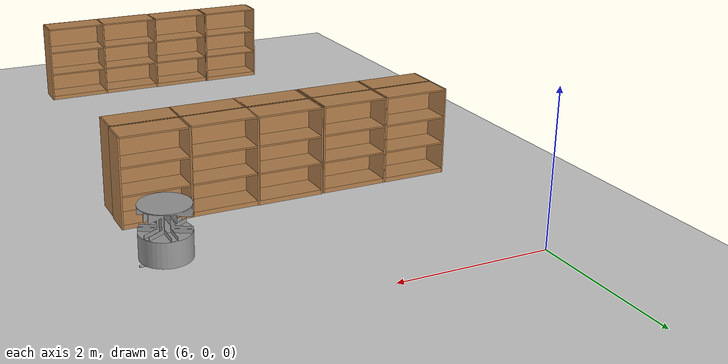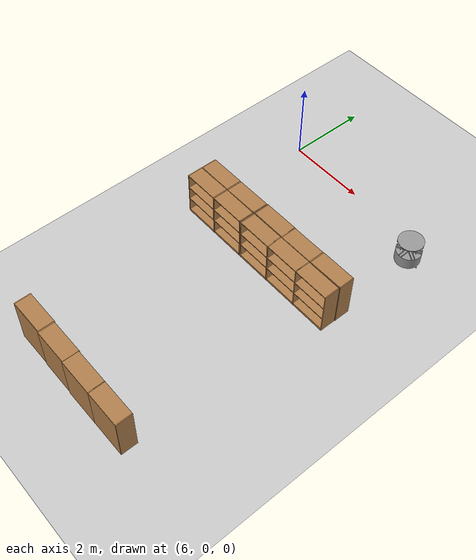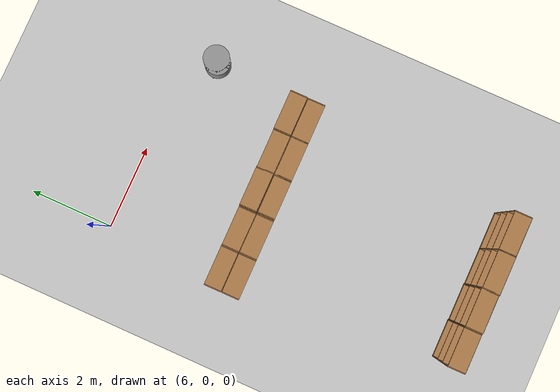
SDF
<sdf version="1.7">
 <world name="default">
  <model name="ground_plane">
   <static>1</static>
   <link name="link">
    <collision name="collision">
     <geometry><plane><normal>0 0 1</normal><size>100 100</size></plane></geometry>
     <surface><friction><ode><mu>100</mu><mu2>50</mu2></ode></friction></surface>
    </collision>
    <visual name="visual">
     <cast_shadows>0</cast_shadows>
     <geometry><plane><normal>0 0 1</normal><size>100 100</size></plane></geometry>
     <material>
      <script><uri>file://media/materials/scripts/gazebo.material</uri><name>Gazebo/Grey</name></script>
     </material>
    </visual>
   </link>
  </model>
  <model name="bookshelf_clone_0_clone_0_clone_clone">
   <static>1</static>
   <link name="link">
    <inertial><mass>1</mass></inertial>
    <collision name="back">
     <pose>0 0.005 0.6 0 -0 0</pose>
     <geometry><box><size>0.9 0.01 1.2</size></box></geometry>
    </collision>
    <visual name="visual1">
     <pose>0 0.005 0.6 0 -0 0</pose>
     <geometry><box><size>0.9 0.01 1.2</size></box></geometry>
     <material>
      <script><uri>file://media/materials/scripts/gazebo.material</uri><name>Gazebo/Wood</name></script>
     </material>
    </visual>
    <collision name="left_side">
     <pose>0.45 -0.195 0.6 0 -0 0</pose>
     <geometry><box><size>0.02 0.4 1.2</size></box></geometry>
    </collision>
    <visual name="visual2">
     <pose>0.45 -0.195 0.6 0 -0 0</pose>
     <geometry><box><size>0.02 0.4 1.2</size></box></geometry>
     <material>
      <script><uri>file://media/materials/scripts/gazebo.material</uri><name>Gazebo/Wood</name></script>
     </material>
    </visual>
    <collision name="right_side">
     <pose>-0.45 -0.195 0.6 0 -0 0</pose>
     <geometry><box><size>0.02 0.4 1.2</size></box></geometry>
    </collision>
    <visual name="visual3">
     <pose>-0.45 -0.195 0.6 0 -0 0</pose>
     <geometry><box><size>0.02 0.4 1.2</size></box></geometry>
     <material>
      <script><uri>file://media/materials/scripts/gazebo.material</uri><name>Gazebo/Wood</name></script>
     </material>
    </visual>
    <collision name="bottom">
     <pose>0 -0.195 0.03 0 -0 0</pose>
     <geometry><box><size>0.88 0.4 0.06</size></box></geometry>
    </collision>
    <visual name="visual4">
     <pose>0 -0.195 0.03 0 -0 0</pose>
     <geometry><box><size>0.88 0.4 0.06</size></box></geometry>
     <material>
      <script><uri>file://media/materials/scripts/gazebo.material</uri><name>Gazebo/Wood</name></script>
     </material>
    </visual>
    <collision name="top">
     <pose>0 -0.195 1.19 0 -0 0</pose>
     <geometry><box><size>0.88 0.4 0.02</size></box></geometry>
    </collision>
    <visual name="visual5">
     <pose>0 -0.195 1.19 0 -0 0</pose>
     <geometry><box><size>0.88 0.4 0.02</size></box></geometry>
     <material>
      <script><uri>file://media/materials/scripts/gazebo.material</uri><name>Gazebo/Wood</name></script>
     </material>
    </visual>
    <collision name="low_shelf">
     <pose>0 -0.195 0.43 0 -0 0</pose>
     <geometry><box><size>0.88 0.4 0.02</size></box></geometry>
    </collision>
    <visual name="visual6">
     <pose>0 -0.195 0.43 0 -0 0</pose>
     <geometry><box><size>0.88 0.4 0.02</size></box></geometry>
     <material>
      <script><uri>file://media/materials/scripts/gazebo.material</uri><name>Gazebo/Wood</name></script>
     </material>
    </visual>
    <collision name="high_shelf">
     <pose>0 -0.195 0.8 0 -0 0</pose>
     <geometry><box><size>0.88 0.4 0.02</size></box></geometry>
    </collision>
    <visual name="visual7">
     <pose>0 -0.195 0.8 0 -0 0</pose>
     <geometry><box><size>0.88 0.4 0.02</size></box></geometry>
     <material>
      <script><uri>file://media/materials/scripts/gazebo.material</uri><name>Gazebo/Wood</name></script>
     </material>
    </visual>
   </link>
   <pose>8.09166 -2.97864 0 0 0 -3.14107</pose>
  </model>
  <model name="bookshelf_clone_0_clone_0_clone_clone_clone">
   <static>1</static>
   <link name="link">
    <inertial><mass>1</mass></inertial>
    <collision name="back">
     <pose>0 0.005 0.6 0 -0 0</pose>
     <geometry><box><size>0.9 0.01 1.2</size></box></geometry>
    </collision>
    <visual name="visual1">
     <pose>0 0.005 0.6 0 -0 0</pose>
     <geometry><box><size>0.9 0.01 1.2</size></box></geometry>
     <material>
      <script><uri>file://media/materials/scripts/gazebo.material</uri><name>Gazebo/Wood</name></script>
     </material>
    </visual>
    <collision name="left_side">
     <pose>0.45 -0.195 0.6 0 -0 0</pose>
     <geometry><box><size>0.02 0.4 1.2</size></box></geometry>
    </collision>
    <visual name="visual2">
     <pose>0.45 -0.195 0.6 0 -0 0</pose>
     <geometry><box><size>0.02 0.4 1.2</size></box></geometry>
     <material>
      <script><uri>file://media/materials/scripts/gazebo.material</uri><name>Gazebo/Wood</name></script>
     </material>
    </visual>
    <collision name="right_side">
     <pose>-0.45 -0.195 0.6 0 -0 0</pose>
     <geometry><box><size>0.02 0.4 1.2</size></box></geometry>
    </collision>
    <visual name="visual3">
     <pose>-0.45 -0.195 0.6 0 -0 0</pose>
     <geometry><box><size>0.02 0.4 1.2</size></box></geometry>
     <material>
      <script><uri>file://media/materials/scripts/gazebo.material</uri><name>Gazebo/Wood</name></script>
     </material>
    </visual>
    <collision name="bottom">
     <pose>0 -0.195 0.03 0 -0 0</pose>
     <geometry><box><size>0.88 0.4 0.06</size></box></geometry>
    </collision>
    <visual name="visual4">
     <pose>0 -0.195 0.03 0 -0 0</pose>
     <geometry><box><size>0.88 0.4 0.06</size></box></geometry>
     <material>
      <script><uri>file://media/materials/scripts/gazebo.material</uri><name>Gazebo/Wood</name></script>
     </material>
    </visual>
    <collision name="top">
     <pose>0 -0.195 1.19 0 -0 0</pose>
     <geometry><box><size>0.88 0.4 0.02</size></box></geometry>
    </collision>
    <visual name="visual5">
     <pose>0 -0.195 1.19 0 -0 0</pose>
     <geometry><box><size>0.88 0.4 0.02</size></box></geometry>
     <material>
      <script><uri>file://media/materials/scripts/gazebo.material</uri><name>Gazebo/Wood</name></script>
     </material>
    </visual>
    <collision name="low_shelf">
     <pose>0 -0.195 0.43 0 -0 0</pose>
     <geometry><box><size>0.88 0.4 0.02</size></box></geometry>
    </collision>
    <visual name="visual6">
     <pose>0 -0.195 0.43 0 -0 0</pose>
     <geometry><box><size>0.88 0.4 0.02</size></box></geometry>
     <material>
      <script><uri>file://media/materials/scripts/gazebo.material</uri><name>Gazebo/Wood</name></script>
     </material>
    </visual>
    <collision name="high_shelf">
     <pose>0 -0.195 0.8 0 -0 0</pose>
     <geometry><box><size>0.88 0.4 0.02</size></box></geometry>
    </collision>
    <visual name="visual7">
     <pose>0 -0.195 0.8 0 -0 0</pose>
     <geometry><box><size>0.88 0.4 0.02</size></box></geometry>
     <material>
      <script><uri>file://media/materials/scripts/gazebo.material</uri><name>Gazebo/Wood</name></script>
     </material>
    </visual>
   </link>
   <pose>6.23979 -2.98685 0 0 0 -3.14107</pose>
  </model>
  <model name="bookshelf_clone_0_clone_0_clone_clone_clone_clone">
   <static>1</static>
   <link name="link">
    <inertial><mass>1</mass></inertial>
    <collision name="back">
     <pose>0 0.005 0.6 0 -0 0</pose>
     <geometry><box><size>0.9 0.01 1.2</size></box></geometry>
    </collision>
    <visual name="visual1">
     <pose>0 0.005 0.6 0 -0 0</pose>
     <geometry><box><size>0.9 0.01 1.2</size></box></geometry>
     <material>
      <script><uri>file://media/materials/scripts/gazebo.material</uri><name>Gazebo/Wood</name></script>
     </material>
    </visual>
    <collision name="left_side">
     <pose>0.45 -0.195 0.6 0 -0 0</pose>
     <geometry><box><size>0.02 0.4 1.2</size></box></geometry>
    </collision>
    <visual name="visual2">
     <pose>0.45 -0.195 0.6 0 -0 0</pose>
     <geometry><box><size>0.02 0.4 1.2</size></box></geometry>
     <material>
      <script><uri>file://media/materials/scripts/gazebo.material</uri><name>Gazebo/Wood</name></script>
     </material>
    </visual>
    <collision name="right_side">
     <pose>-0.45 -0.195 0.6 0 -0 0</pose>
     <geometry><box><size>0.02 0.4 1.2</size></box></geometry>
    </collision>
    <visual name="visual3">
     <pose>-0.45 -0.195 0.6 0 -0 0</pose>
     <geometry><box><size>0.02 0.4 1.2</size></box></geometry>
     <material>
      <script><uri>file://media/materials/scripts/gazebo.material</uri><name>Gazebo/Wood</name></script>
     </material>
    </visual>
    <collision name="bottom">
     <pose>0 -0.195 0.03 0 -0 0</pose>
     <geometry><box><size>0.88 0.4 0.06</size></box></geometry>
    </collision>
    <visual name="visual4">
     <pose>0 -0.195 0.03 0 -0 0</pose>
     <geometry><box><size>0.88 0.4 0.06</size></box></geometry>
     <material>
      <script><uri>file://media/materials/scripts/gazebo.material</uri><name>Gazebo/Wood</name></script>
     </material>
    </visual>
    <collision name="top">
     <pose>0 -0.195 1.19 0 -0 0</pose>
     <geometry><box><size>0.88 0.4 0.02</size></box></geometry>
    </collision>
    <visual name="visual5">
     <pose>0 -0.195 1.19 0 -0 0</pose>
     <geometry><box><size>0.88 0.4 0.02</size></box></geometry>
     <material>
      <script><uri>file://media/materials/scripts/gazebo.material</uri><name>Gazebo/Wood</name></script>
     </material>
    </visual>
    <collision name="low_shelf">
     <pose>0 -0.195 0.43 0 -0 0</pose>
     <geometry><box><size>0.88 0.4 0.02</size></box></geometry>
    </collision>
    <visual name="visual6">
     <pose>0 -0.195 0.43 0 -0 0</pose>
     <geometry><box><size>0.88 0.4 0.02</size></box></geometry>
     <material>
      <script><uri>file://media/materials/scripts/gazebo.material</uri><name>Gazebo/Wood</name></script>
     </material>
    </visual>
    <collision name="high_shelf">
     <pose>0 -0.195 0.8 0 -0 0</pose>
     <geometry><box><size>0.88 0.4 0.02</size></box></geometry>
    </collision>
    <visual name="visual7">
     <pose>0 -0.195 0.8 0 -0 0</pose>
     <geometry><box><size>0.88 0.4 0.02</size></box></geometry>
     <material>
      <script><uri>file://media/materials/scripts/gazebo.material</uri><name>Gazebo/Wood</name></script>
     </material>
    </visual>
   </link>
   <pose>7.1578 -2.98828 0 0 0 -3.14107</pose>
  </model>
  <model name="bookshelf_clone_0_clone_0_clone_clone_clone_clone_clone_1_clone_clone_clone_clone_clone_clone_clone_clone_clone_clone_0_clone_clone_clone_clone_clone_0_clone_1_clone_2">
   <static>1</static>
   <link name="link">
    <inertial><mass>1</mass></inertial>
    <collision name="back">
     <pose>0 0.005 0.6 0 -0 0</pose>
     <geometry><box><size>0.9 0.01 1.2</size></box></geometry>
    </collision>
    <visual name="visual1">
     <pose>0 0.005 0.6 0 -0 0</pose>
     <geometry><box><size>0.9 0.01 1.2</size></box></geometry>
     <material>
      <script><uri>file://media/materials/scripts/gazebo.material</uri><name>Gazebo/Wood</name></script>
     </material>
    </visual>
    <collision name="left_side">
     <pose>0.45 -0.195 0.6 0 -0 0</pose>
     <geometry><box><size>0.02 0.4 1.2</size></box></geometry>
    </collision>
    <visual name="visual2">
     <pose>0.45 -0.195 0.6 0 -0 0</pose>
     <geometry><box><size>0.02 0.4 1.2</size></box></geometry>
     <material>
      <script><uri>file://media/materials/scripts/gazebo.material</uri><name>Gazebo/Wood</name></script>
     </material>
    </visual>
    <collision name="right_side">
     <pose>-0.45 -0.195 0.6 0 -0 0</pose>
     <geometry><box><size>0.02 0.4 1.2</size></box></geometry>
    </collision>
    <visual name="visual3">
     <pose>-0.45 -0.195 0.6 0 -0 0</pose>
     <geometry><box><size>0.02 0.4 1.2</size></box></geometry>
     <material>
      <script><uri>file://media/materials/scripts/gazebo.material</uri><name>Gazebo/Wood</name></script>
     </material>
    </visual>
    <collision name="bottom">
     <pose>0 -0.195 0.03 0 -0 0</pose>
     <geometry><box><size>0.88 0.4 0.06</size></box></geometry>
    </collision>
    <visual name="visual4">
     <pose>0 -0.195 0.03 0 -0 0</pose>
     <geometry><box><size>0.88 0.4 0.06</size></box></geometry>
     <material>
      <script><uri>file://media/materials/scripts/gazebo.material</uri><name>Gazebo/Wood</name></script>
     </material>
    </visual>
    <collision name="top">
     <pose>0 -0.195 1.19 0 -0 0</pose>
     <geometry><box><size>0.88 0.4 0.02</size></box></geometry>
    </collision>
    <visual name="visual5">
     <pose>0 -0.195 1.19 0 -0 0</pose>
     <geometry><box><size>0.88 0.4 0.02</size></box></geometry>
     <material>
      <script><uri>file://media/materials/scripts/gazebo.material</uri><name>Gazebo/Wood</name></script>
     </material>
    </visual>
    <collision name="low_shelf">
     <pose>0 -0.195 0.43 0 -0 0</pose>
     <geometry><box><size>0.88 0.4 0.02</size></box></geometry>
    </collision>
    <visual name="visual6">
     <pose>0 -0.195 0.43 0 -0 0</pose>
     <geometry><box><size>0.88 0.4 0.02</size></box></geometry>
     <material>
      <script><uri>file://media/materials/scripts/gazebo.material</uri><name>Gazebo/Wood</name></script>
     </material>
    </visual>
    <collision name="high_shelf">
     <pose>0 -0.195 0.8 0 -0 0</pose>
     <geometry><box><size>0.88 0.4 0.02</size></box></geometry>
    </collision>
    <visual name="visual7">
     <pose>0 -0.195 0.8 0 -0 0</pose>
     <geometry><box><size>0.88 0.4 0.02</size></box></geometry>
     <material>
      <script><uri>file://media/materials/scripts/gazebo.material</uri><name>Gazebo/Wood</name></script>
     </material>
    </visual>
   </link>
   <pose>6.24111 -3.009 0.004614 0 -0 0.000147</pose>
  </model>
  <model name="bookshelf_clone_0_clone_0_clone_clone_clone_clone_clone_1_clone_clone_clone_clone_clone_clone_clone_clone_clone_clone_0_clone_clone_clone_clone_clone_0_clone_1_clone_2_clone">
   <static>1</static>
   <link name="link">
    <inertial><mass>1</mass></inertial>
    <collision name="back">
     <pose>0 0.005 0.6 0 -0 0</pose>
     <geometry><box><size>0.9 0.01 1.2</size></box></geometry>
    </collision>
    <visual name="visual1">
     <pose>0 0.005 0.6 0 -0 0</pose>
     <geometry><box><size>0.9 0.01 1.2</size></box></geometry>
     <material>
      <script><uri>file://media/materials/scripts/gazebo.material</uri><name>Gazebo/Wood</name></script>
     </material>
    </visual>
    <collision name="left_side">
     <pose>0.45 -0.195 0.6 0 -0 0</pose>
     <geometry><box><size>0.02 0.4 1.2</size></box></geometry>
    </collision>
    <visual name="visual2">
     <pose>0.45 -0.195 0.6 0 -0 0</pose>
     <geometry><box><size>0.02 0.4 1.2</size></box></geometry>
     <material>
      <script><uri>file://media/materials/scripts/gazebo.material</uri><name>Gazebo/Wood</name></script>
     </material>
    </visual>
    <collision name="right_side">
     <pose>-0.45 -0.195 0.6 0 -0 0</pose>
     <geometry><box><size>0.02 0.4 1.2</size></box></geometry>
    </collision>
    <visual name="visual3">
     <pose>-0.45 -0.195 0.6 0 -0 0</pose>
     <geometry><box><size>0.02 0.4 1.2</size></box></geometry>
     <material>
      <script><uri>file://media/materials/scripts/gazebo.material</uri><name>Gazebo/Wood</name></script>
     </material>
    </visual>
    <collision name="bottom">
     <pose>0 -0.195 0.03 0 -0 0</pose>
     <geometry><box><size>0.88 0.4 0.06</size></box></geometry>
    </collision>
    <visual name="visual4">
     <pose>0 -0.195 0.03 0 -0 0</pose>
     <geometry><box><size>0.88 0.4 0.06</size></box></geometry>
     <material>
      <script><uri>file://media/materials/scripts/gazebo.material</uri><name>Gazebo/Wood</name></script>
     </material>
    </visual>
    <collision name="top">
     <pose>0 -0.195 1.19 0 -0 0</pose>
     <geometry><box><size>0.88 0.4 0.02</size></box></geometry>
    </collision>
    <visual name="visual5">
     <pose>0 -0.195 1.19 0 -0 0</pose>
     <geometry><box><size>0.88 0.4 0.02</size></box></geometry>
     <material>
      <script><uri>file://media/materials/scripts/gazebo.material</uri><name>Gazebo/Wood</name></script>
     </material>
    </visual>
    <collision name="low_shelf">
     <pose>0 -0.195 0.43 0 -0 0</pose>
     <geometry><box><size>0.88 0.4 0.02</size></box></geometry>
    </collision>
    <visual name="visual6">
     <pose>0 -0.195 0.43 0 -0 0</pose>
     <geometry><box><size>0.88 0.4 0.02</size></box></geometry>
     <material>
      <script><uri>file://media/materials/scripts/gazebo.material</uri><name>Gazebo/Wood</name></script>
     </material>
    </visual>
    <collision name="high_shelf">
     <pose>0 -0.195 0.8 0 -0 0</pose>
     <geometry><box><size>0.88 0.4 0.02</size></box></geometry>
    </collision>
    <visual name="visual7">
     <pose>0 -0.195 0.8 0 -0 0</pose>
     <geometry><box><size>0.88 0.4 0.02</size></box></geometry>
     <material>
      <script><uri>file://media/materials/scripts/gazebo.material</uri><name>Gazebo/Wood</name></script>
     </material>
    </visual>
   </link>
   <pose>7.15854 -3.009 0.004614 0 -0 0.000147</pose>
  </model>
  <model name="bookshelf_clone_0_clone_0_clone_clone_clone_clone_clone_1_clone_clone_clone_clone_clone_clone_clone_clone_clone_clone_0_clone_clone_clone_clone_clone_0_clone_1_clone_2_clone_0">
   <static>1</static>
   <link name="link">
    <inertial><mass>1</mass></inertial>
    <collision name="back">
     <pose>0 0.005 0.6 0 -0 0</pose>
     <geometry><box><size>0.9 0.01 1.2</size></box></geometry>
    </collision>
    <visual name="visual1">
     <pose>0 0.005 0.6 0 -0 0</pose>
     <geometry><box><size>0.9 0.01 1.2</size></box></geometry>
     <material>
      <script><uri>file://media/materials/scripts/gazebo.material</uri><name>Gazebo/Wood</name></script>
     </material>
    </visual>
    <collision name="left_side">
     <pose>0.45 -0.195 0.6 0 -0 0</pose>
     <geometry><box><size>0.02 0.4 1.2</size></box></geometry>
    </collision>
    <visual name="visual2">
     <pose>0.45 -0.195 0.6 0 -0 0</pose>
     <geometry><box><size>0.02 0.4 1.2</size></box></geometry>
     <material>
      <script><uri>file://media/materials/scripts/gazebo.material</uri><name>Gazebo/Wood</name></script>
     </material>
    </visual>
    <collision name="right_side">
     <pose>-0.45 -0.195 0.6 0 -0 0</pose>
     <geometry><box><size>0.02 0.4 1.2</size></box></geometry>
    </collision>
    <visual name="visual3">
     <pose>-0.45 -0.195 0.6 0 -0 0</pose>
     <geometry><box><size>0.02 0.4 1.2</size></box></geometry>
     <material>
      <script><uri>file://media/materials/scripts/gazebo.material</uri><name>Gazebo/Wood</name></script>
     </material>
    </visual>
    <collision name="bottom">
     <pose>0 -0.195 0.03 0 -0 0</pose>
     <geometry><box><size>0.88 0.4 0.06</size></box></geometry>
    </collision>
    <visual name="visual4">
     <pose>0 -0.195 0.03 0 -0 0</pose>
     <geometry><box><size>0.88 0.4 0.06</size></box></geometry>
     <material>
      <script><uri>file://media/materials/scripts/gazebo.material</uri><name>Gazebo/Wood</name></script>
     </material>
    </visual>
    <collision name="top">
     <pose>0 -0.195 1.19 0 -0 0</pose>
     <geometry><box><size>0.88 0.4 0.02</size></box></geometry>
    </collision>
    <visual name="visual5">
     <pose>0 -0.195 1.19 0 -0 0</pose>
     <geometry><box><size>0.88 0.4 0.02</size></box></geometry>
     <material>
      <script><uri>file://media/materials/scripts/gazebo.material</uri><name>Gazebo/Wood</name></script>
     </material>
    </visual>
    <collision name="low_shelf">
     <pose>0 -0.195 0.43 0 -0 0</pose>
     <geometry><box><size>0.88 0.4 0.02</size></box></geometry>
    </collision>
    <visual name="visual6">
     <pose>0 -0.195 0.43 0 -0 0</pose>
     <geometry><box><size>0.88 0.4 0.02</size></box></geometry>
     <material>
      <script><uri>file://media/materials/scripts/gazebo.material</uri><name>Gazebo/Wood</name></script>
     </material>
    </visual>
    <collision name="high_shelf">
     <pose>0 -0.195 0.8 0 -0 0</pose>
     <geometry><box><size>0.88 0.4 0.02</size></box></geometry>
    </collision>
    <visual name="visual7">
     <pose>0 -0.195 0.8 0 -0 0</pose>
     <geometry><box><size>0.88 0.4 0.02</size></box></geometry>
     <material>
      <script><uri>file://media/materials/scripts/gazebo.material</uri><name>Gazebo/Wood</name></script>
     </material>
    </visual>
   </link>
   <pose>8.09797 -3.009 0.004614 0 -0 0.000147</pose>
  </model>
  <model name="bookshelf_clone_0_clone_0_clone_clone_clone_clone_clone_1_clone_clone_clone_clone_clone_clone_clone_clone_clone_clone_0_clone_clone_clone_clone_clone_0_clone_1_clone_2_clone_0_clone">
   <static>1</static>
   <link name="link">
    <inertial><mass>1</mass></inertial>
    <collision name="back">
     <pose>0 0.005 0.6 0 -0 0</pose>
     <geometry><box><size>0.9 0.01 1.2</size></box></geometry>
    </collision>
    <visual name="visual1">
     <pose>0 0.005 0.6 0 -0 0</pose>
     <geometry><box><size>0.9 0.01 1.2</size></box></geometry>
     <material>
      <script><uri>file://media/materials/scripts/gazebo.material</uri><name>Gazebo/Wood</name></script>
     </material>
    </visual>
    <collision name="left_side">
     <pose>0.45 -0.195 0.6 0 -0 0</pose>
     <geometry><box><size>0.02 0.4 1.2</size></box></geometry>
    </collision>
    <visual name="visual2">
     <pose>0.45 -0.195 0.6 0 -0 0</pose>
     <geometry><box><size>0.02 0.4 1.2</size></box></geometry>
     <material>
      <script><uri>file://media/materials/scripts/gazebo.material</uri><name>Gazebo/Wood</name></script>
     </material>
    </visual>
    <collision name="right_side">
     <pose>-0.45 -0.195 0.6 0 -0 0</pose>
     <geometry><box><size>0.02 0.4 1.2</size></box></geometry>
    </collision>
    <visual name="visual3">
     <pose>-0.45 -0.195 0.6 0 -0 0</pose>
     <geometry><box><size>0.02 0.4 1.2</size></box></geometry>
     <material>
      <script><uri>file://media/materials/scripts/gazebo.material</uri><name>Gazebo/Wood</name></script>
     </material>
    </visual>
    <collision name="bottom">
     <pose>0 -0.195 0.03 0 -0 0</pose>
     <geometry><box><size>0.88 0.4 0.06</size></box></geometry>
    </collision>
    <visual name="visual4">
     <pose>0 -0.195 0.03 0 -0 0</pose>
     <geometry><box><size>0.88 0.4 0.06</size></box></geometry>
     <material>
      <script><uri>file://media/materials/scripts/gazebo.material</uri><name>Gazebo/Wood</name></script>
     </material>
    </visual>
    <collision name="top">
     <pose>0 -0.195 1.19 0 -0 0</pose>
     <geometry><box><size>0.88 0.4 0.02</size></box></geometry>
    </collision>
    <visual name="visual5">
     <pose>0 -0.195 1.19 0 -0 0</pose>
     <geometry><box><size>0.88 0.4 0.02</size></box></geometry>
     <material>
      <script><uri>file://media/materials/scripts/gazebo.material</uri><name>Gazebo/Wood</name></script>
     </material>
    </visual>
    <collision name="low_shelf">
     <pose>0 -0.195 0.43 0 -0 0</pose>
     <geometry><box><size>0.88 0.4 0.02</size></box></geometry>
    </collision>
    <visual name="visual6">
     <pose>0 -0.195 0.43 0 -0 0</pose>
     <geometry><box><size>0.88 0.4 0.02</size></box></geometry>
     <material>
      <script><uri>file://media/materials/scripts/gazebo.material</uri><name>Gazebo/Wood</name></script>
     </material>
    </visual>
    <collision name="high_shelf">
     <pose>0 -0.195 0.8 0 -0 0</pose>
     <geometry><box><size>0.88 0.4 0.02</size></box></geometry>
    </collision>
    <visual name="visual7">
     <pose>0 -0.195 0.8 0 -0 0</pose>
     <geometry><box><size>0.88 0.4 0.02</size></box></geometry>
     <material>
      <script><uri>file://media/materials/scripts/gazebo.material</uri><name>Gazebo/Wood</name></script>
     </material>
    </visual>
   </link>
   <pose>8.98045 -3.00741 0.004614 0 -0 0.000147</pose>
  </model>
  <model name="bookshelf_clone_0_clone_0_clone_clone_clone_0">
   <static>1</static>
   <link name="link">
    <inertial><mass>1</mass></inertial>
    <collision name="back">
     <pose>0 0.005 0.6 0 -0 0</pose>
     <geometry><box><size>0.9 0.01 1.2</size></box></geometry>
    </collision>
    <visual name="visual1">
     <pose>0 0.005 0.6 0 -0 0</pose>
     <geometry><box><size>0.9 0.01 1.2</size></box></geometry>
     <material>
      <script><uri>file://media/materials/scripts/gazebo.material</uri><name>Gazebo/Wood</name></script>
     </material>
    </visual>
    <collision name="left_side">
     <pose>0.45 -0.195 0.6 0 -0 0</pose>
     <geometry><box><size>0.02 0.4 1.2</size></box></geometry>
    </collision>
    <visual name="visual2">
     <pose>0.45 -0.195 0.6 0 -0 0</pose>
     <geometry><box><size>0.02 0.4 1.2</size></box></geometry>
     <material>
      <script><uri>file://media/materials/scripts/gazebo.material</uri><name>Gazebo/Wood</name></script>
     </material>
    </visual>
    <collision name="right_side">
     <pose>-0.45 -0.195 0.6 0 -0 0</pose>
     <geometry><box><size>0.02 0.4 1.2</size></box></geometry>
    </collision>
    <visual name="visual3">
     <pose>-0.45 -0.195 0.6 0 -0 0</pose>
     <geometry><box><size>0.02 0.4 1.2</size></box></geometry>
     <material>
      <script><uri>file://media/materials/scripts/gazebo.material</uri><name>Gazebo/Wood</name></script>
     </material>
    </visual>
    <collision name="bottom">
     <pose>0 -0.195 0.03 0 -0 0</pose>
     <geometry><box><size>0.88 0.4 0.06</size></box></geometry>
    </collision>
    <visual name="visual4">
     <pose>0 -0.195 0.03 0 -0 0</pose>
     <geometry><box><size>0.88 0.4 0.06</size></box></geometry>
     <material>
      <script><uri>file://media/materials/scripts/gazebo.material</uri><name>Gazebo/Wood</name></script>
     </material>
    </visual>
    <collision name="top">
     <pose>0 -0.195 1.19 0 -0 0</pose>
     <geometry><box><size>0.88 0.4 0.02</size></box></geometry>
    </collision>
    <visual name="visual5">
     <pose>0 -0.195 1.19 0 -0 0</pose>
     <geometry><box><size>0.88 0.4 0.02</size></box></geometry>
     <material>
      <script><uri>file://media/materials/scripts/gazebo.material</uri><name>Gazebo/Wood</name></script>
     </material>
    </visual>
    <collision name="low_shelf">
     <pose>0 -0.195 0.43 0 -0 0</pose>
     <geometry><box><size>0.88 0.4 0.02</size></box></geometry>
    </collision>
    <visual name="visual6">
     <pose>0 -0.195 0.43 0 -0 0</pose>
     <geometry><box><size>0.88 0.4 0.02</size></box></geometry>
     <material>
      <script><uri>file://media/materials/scripts/gazebo.material</uri><name>Gazebo/Wood</name></script>
     </material>
    </visual>
    <collision name="high_shelf">
     <pose>0 -0.195 0.8 0 -0 0</pose>
     <geometry><box><size>0.88 0.4 0.02</size></box></geometry>
    </collision>
    <visual name="visual7">
     <pose>0 -0.195 0.8 0 -0 0</pose>
     <geometry><box><size>0.88 0.4 0.02</size></box></geometry>
     <material>
      <script><uri>file://media/materials/scripts/gazebo.material</uri><name>Gazebo/Wood</name></script>
     </material>
    </visual>
   </link>
   <pose>8.97687 -2.98648 0 0 0 -3.14107</pose>
  </model>
  <model name="bookshelf_clone_clone_1_clone_clone_0_clone_clone">
   <static>1</static>
   <link name="link">
    <inertial><mass>1</mass></inertial>
    <collision name="back">
     <pose>0 0.005 0.6 0 -0 0</pose>
     <geometry><box><size>0.9 0.01 1.2</size></box></geometry>
    </collision>
    <visual name="visual1">
     <pose>0 0.005 0.6 0 -0 0</pose>
     <geometry><box><size>0.9 0.01 1.2</size></box></geometry>
     <material>
      <script><uri>file://media/materials/scripts/gazebo.material</uri><name>Gazebo/Wood</name></script>
     </material>
    </visual>
    <collision name="left_side">
     <pose>0.45 -0.195 0.6 0 -0 0</pose>
     <geometry><box><size>0.02 0.4 1.2</size></box></geometry>
    </collision>
    <visual name="visual2">
     <pose>0.45 -0.195 0.6 0 -0 0</pose>
     <geometry><box><size>0.02 0.4 1.2</size></box></geometry>
     <material>
      <script><uri>file://media/materials/scripts/gazebo.material</uri><name>Gazebo/Wood</name></script>
     </material>
    </visual>
    <collision name="right_side">
     <pose>-0.45 -0.195 0.6 0 -0 0</pose>
     <geometry><box><size>0.02 0.4 1.2</size></box></geometry>
    </collision>
    <visual name="visual3">
     <pose>-0.45 -0.195 0.6 0 -0 0</pose>
     <geometry><box><size>0.02 0.4 1.2</size></box></geometry>
     <material>
      <script><uri>file://media/materials/scripts/gazebo.material</uri><name>Gazebo/Wood</name></script>
     </material>
    </visual>
    <collision name="bottom">
     <pose>0 -0.195 0.03 0 -0 0</pose>
     <geometry><box><size>0.88 0.4 0.06</size></box></geometry>
    </collision>
    <visual name="visual4">
     <pose>0 -0.195 0.03 0 -0 0</pose>
     <geometry><box><size>0.88 0.4 0.06</size></box></geometry>
     <material>
      <script><uri>file://media/materials/scripts/gazebo.material</uri><name>Gazebo/Wood</name></script>
     </material>
    </visual>
    <collision name="top">
     <pose>0 -0.195 1.19 0 -0 0</pose>
     <geometry><box><size>0.88 0.4 0.02</size></box></geometry>
    </collision>
    <visual name="visual5">
     <pose>0 -0.195 1.19 0 -0 0</pose>
     <geometry><box><size>0.88 0.4 0.02</size></box></geometry>
     <material>
      <script><uri>file://media/materials/scripts/gazebo.material</uri><name>Gazebo/Wood</name></script>
     </material>
    </visual>
    <collision name="low_shelf">
     <pose>0 -0.195 0.43 0 -0 0</pose>
     <geometry><box><size>0.88 0.4 0.02</size></box></geometry>
    </collision>
    <visual name="visual6">
     <pose>0 -0.195 0.43 0 -0 0</pose>
     <geometry><box><size>0.88 0.4 0.02</size></box></geometry>
     <material>
      <script><uri>file://media/materials/scripts/gazebo.material</uri><name>Gazebo/Wood</name></script>
     </material>
    </visual>
    <collision name="high_shelf">
     <pose>0 -0.195 0.8 0 -0 0</pose>
     <geometry><box><size>0.88 0.4 0.02</size></box></geometry>
    </collision>
    <visual name="visual7">
     <pose>0 -0.195 0.8 0 -0 0</pose>
     <geometry><box><size>0.88 0.4 0.02</size></box></geometry>
     <material>
      <script><uri>file://media/materials/scripts/gazebo.material</uri><name>Gazebo/Wood</name></script>
     </material>
    </visual>
   </link>
   <pose>6.76746 -8.38719 0 0 0 -3.14107</pose>
  </model>
  <model name="bookshelf_clone_clone_1_clone_clone_0_clone_clone_0">
   <static>1</static>
   <link name="link">
    <inertial><mass>1</mass></inertial>
    <collision name="back">
     <pose>0 0.005 0.6 0 -0 0</pose>
     <geometry><box><size>0.9 0.01 1.2</size></box></geometry>
    </collision>
    <visual name="visual1">
     <pose>0 0.005 0.6 0 -0 0</pose>
     <geometry><box><size>0.9 0.01 1.2</size></box></geometry>
     <material>
      <script><uri>file://media/materials/scripts/gazebo.material</uri><name>Gazebo/Wood</name></script>
     </material>
    </visual>
    <collision name="left_side">
     <pose>0.45 -0.195 0.6 0 -0 0</pose>
     <geometry><box><size>0.02 0.4 1.2</size></box></geometry>
    </collision>
    <visual name="visual2">
     <pose>0.45 -0.195 0.6 0 -0 0</pose>
     <geometry><box><size>0.02 0.4 1.2</size></box></geometry>
     <material>
      <script><uri>file://media/materials/scripts/gazebo.material</uri><name>Gazebo/Wood</name></script>
     </material>
    </visual>
    <collision name="right_side">
     <pose>-0.45 -0.195 0.6 0 -0 0</pose>
     <geometry><box><size>0.02 0.4 1.2</size></box></geometry>
    </collision>
    <visual name="visual3">
     <pose>-0.45 -0.195 0.6 0 -0 0</pose>
     <geometry><box><size>0.02 0.4 1.2</size></box></geometry>
     <material>
      <script><uri>file://media/materials/scripts/gazebo.material</uri><name>Gazebo/Wood</name></script>
     </material>
    </visual>
    <collision name="bottom">
     <pose>0 -0.195 0.03 0 -0 0</pose>
     <geometry><box><size>0.88 0.4 0.06</size></box></geometry>
    </collision>
    <visual name="visual4">
     <pose>0 -0.195 0.03 0 -0 0</pose>
     <geometry><box><size>0.88 0.4 0.06</size></box></geometry>
     <material>
      <script><uri>file://media/materials/scripts/gazebo.material</uri><name>Gazebo/Wood</name></script>
     </material>
    </visual>
    <collision name="top">
     <pose>0 -0.195 1.19 0 -0 0</pose>
     <geometry><box><size>0.88 0.4 0.02</size></box></geometry>
    </collision>
    <visual name="visual5">
     <pose>0 -0.195 1.19 0 -0 0</pose>
     <geometry><box><size>0.88 0.4 0.02</size></box></geometry>
     <material>
      <script><uri>file://media/materials/scripts/gazebo.material</uri><name>Gazebo/Wood</name></script>
     </material>
    </visual>
    <collision name="low_shelf">
     <pose>0 -0.195 0.43 0 -0 0</pose>
     <geometry><box><size>0.88 0.4 0.02</size></box></geometry>
    </collision>
    <visual name="visual6">
     <pose>0 -0.195 0.43 0 -0 0</pose>
     <geometry><box><size>0.88 0.4 0.02</size></box></geometry>
     <material>
      <script><uri>file://media/materials/scripts/gazebo.material</uri><name>Gazebo/Wood</name></script>
     </material>
    </visual>
    <collision name="high_shelf">
     <pose>0 -0.195 0.8 0 -0 0</pose>
     <geometry><box><size>0.88 0.4 0.02</size></box></geometry>
    </collision>
    <visual name="visual7">
     <pose>0 -0.195 0.8 0 -0 0</pose>
     <geometry><box><size>0.88 0.4 0.02</size></box></geometry>
     <material>
      <script><uri>file://media/materials/scripts/gazebo.material</uri><name>Gazebo/Wood</name></script>
     </material>
    </visual>
   </link>
   <pose>7.68281 -8.40007 0 0 0 -3.14107</pose>
  </model>
  <model name="bookshelf_clone_clone_1_clone_clone_0_clone_clone_1">
   <static>1</static>
   <link name="link">
    <inertial><mass>1</mass></inertial>
    <collision name="back">
     <pose>0 0.005 0.6 0 -0 0</pose>
     <geometry><box><size>0.9 0.01 1.2</size></box></geometry>
    </collision>
    <visual name="visual1">
     <pose>0 0.005 0.6 0 -0 0</pose>
     <geometry><box><size>0.9 0.01 1.2</size></box></geometry>
     <material>
      <script><uri>file://media/materials/scripts/gazebo.material</uri><name>Gazebo/Wood</name></script>
     </material>
    </visual>
    <collision name="left_side">
     <pose>0.45 -0.195 0.6 0 -0 0</pose>
     <geometry><box><size>0.02 0.4 1.2</size></box></geometry>
    </collision>
    <visual name="visual2">
     <pose>0.45 -0.195 0.6 0 -0 0</pose>
     <geometry><box><size>0.02 0.4 1.2</size></box></geometry>
     <material>
      <script><uri>file://media/materials/scripts/gazebo.material</uri><name>Gazebo/Wood</name></script>
     </material>
    </visual>
    <collision name="right_side">
     <pose>-0.45 -0.195 0.6 0 -0 0</pose>
     <geometry><box><size>0.02 0.4 1.2</size></box></geometry>
    </collision>
    <visual name="visual3">
     <pose>-0.45 -0.195 0.6 0 -0 0</pose>
     <geometry><box><size>0.02 0.4 1.2</size></box></geometry>
     <material>
      <script><uri>file://media/materials/scripts/gazebo.material</uri><name>Gazebo/Wood</name></script>
     </material>
    </visual>
    <collision name="bottom">
     <pose>0 -0.195 0.03 0 -0 0</pose>
     <geometry><box><size>0.88 0.4 0.06</size></box></geometry>
    </collision>
    <visual name="visual4">
     <pose>0 -0.195 0.03 0 -0 0</pose>
     <geometry><box><size>0.88 0.4 0.06</size></box></geometry>
     <material>
      <script><uri>file://media/materials/scripts/gazebo.material</uri><name>Gazebo/Wood</name></script>
     </material>
    </visual>
    <collision name="top">
     <pose>0 -0.195 1.19 0 -0 0</pose>
     <geometry><box><size>0.88 0.4 0.02</size></box></geometry>
    </collision>
    <visual name="visual5">
     <pose>0 -0.195 1.19 0 -0 0</pose>
     <geometry><box><size>0.88 0.4 0.02</size></box></geometry>
     <material>
      <script><uri>file://media/materials/scripts/gazebo.material</uri><name>Gazebo/Wood</name></script>
     </material>
    </visual>
    <collision name="low_shelf">
     <pose>0 -0.195 0.43 0 -0 0</pose>
     <geometry><box><size>0.88 0.4 0.02</size></box></geometry>
    </collision>
    <visual name="visual6">
     <pose>0 -0.195 0.43 0 -0 0</pose>
     <geometry><box><size>0.88 0.4 0.02</size></box></geometry>
     <material>
      <script><uri>file://media/materials/scripts/gazebo.material</uri><name>Gazebo/Wood</name></script>
     </material>
    </visual>
    <collision name="high_shelf">
     <pose>0 -0.195 0.8 0 -0 0</pose>
     <geometry><box><size>0.88 0.4 0.02</size></box></geometry>
    </collision>
    <visual name="visual7">
     <pose>0 -0.195 0.8 0 -0 0</pose>
     <geometry><box><size>0.88 0.4 0.02</size></box></geometry>
     <material>
      <script><uri>file://media/materials/scripts/gazebo.material</uri><name>Gazebo/Wood</name></script>
     </material>
    </visual>
   </link>
   <pose>8.5716 -8.41209 0 0 0 -3.14107</pose>
  </model>
  <model name="bookshelf_clone_clone_1_clone_clone_0_clone_clone_2">
   <static>1</static>
   <link name="link">
    <inertial><mass>1</mass></inertial>
    <collision name="back">
     <pose>0 0.005 0.6 0 -0 0</pose>
     <geometry><box><size>0.9 0.01 1.2</size></box></geometry>
    </collision>
    <visual name="visual1">
     <pose>0 0.005 0.6 0 -0 0</pose>
     <geometry><box><size>0.9 0.01 1.2</size></box></geometry>
     <material>
      <script><uri>file://media/materials/scripts/gazebo.material</uri><name>Gazebo/Wood</name></script>
     </material>
    </visual>
    <collision name="left_side">
     <pose>0.45 -0.195 0.6 0 -0 0</pose>
     <geometry><box><size>0.02 0.4 1.2</size></box></geometry>
    </collision>
    <visual name="visual2">
     <pose>0.45 -0.195 0.6 0 -0 0</pose>
     <geometry><box><size>0.02 0.4 1.2</size></box></geometry>
     <material>
      <script><uri>file://media/materials/scripts/gazebo.material</uri><name>Gazebo/Wood</name></script>
     </material>
    </visual>
    <collision name="right_side">
     <pose>-0.45 -0.195 0.6 0 -0 0</pose>
     <geometry><box><size>0.02 0.4 1.2</size></box></geometry>
    </collision>
    <visual name="visual3">
     <pose>-0.45 -0.195 0.6 0 -0 0</pose>
     <geometry><box><size>0.02 0.4 1.2</size></box></geometry>
     <material>
      <script><uri>file://media/materials/scripts/gazebo.material</uri><name>Gazebo/Wood</name></script>
     </material>
    </visual>
    <collision name="bottom">
     <pose>0 -0.195 0.03 0 -0 0</pose>
     <geometry><box><size>0.88 0.4 0.06</size></box></geometry>
    </collision>
    <visual name="visual4">
     <pose>0 -0.195 0.03 0 -0 0</pose>
     <geometry><box><size>0.88 0.4 0.06</size></box></geometry>
     <material>
      <script><uri>file://media/materials/scripts/gazebo.material</uri><name>Gazebo/Wood</name></script>
     </material>
    </visual>
    <collision name="top">
     <pose>0 -0.195 1.19 0 -0 0</pose>
     <geometry><box><size>0.88 0.4 0.02</size></box></geometry>
    </collision>
    <visual name="visual5">
     <pose>0 -0.195 1.19 0 -0 0</pose>
     <geometry><box><size>0.88 0.4 0.02</size></box></geometry>
     <material>
      <script><uri>file://media/materials/scripts/gazebo.material</uri><name>Gazebo/Wood</name></script>
     </material>
    </visual>
    <collision name="low_shelf">
     <pose>0 -0.195 0.43 0 -0 0</pose>
     <geometry><box><size>0.88 0.4 0.02</size></box></geometry>
    </collision>
    <visual name="visual6">
     <pose>0 -0.195 0.43 0 -0 0</pose>
     <geometry><box><size>0.88 0.4 0.02</size></box></geometry>
     <material>
      <script><uri>file://media/materials/scripts/gazebo.material</uri><name>Gazebo/Wood</name></script>
     </material>
    </visual>
    <collision name="high_shelf">
     <pose>0 -0.195 0.8 0 -0 0</pose>
     <geometry><box><size>0.88 0.4 0.02</size></box></geometry>
    </collision>
    <visual name="visual7">
     <pose>0 -0.195 0.8 0 -0 0</pose>
     <geometry><box><size>0.88 0.4 0.02</size></box></geometry>
     <material>
      <script><uri>file://media/materials/scripts/gazebo.material</uri><name>Gazebo/Wood</name></script>
     </material>
    </visual>
   </link>
   <pose>9.47375 -8.4111 0 0 0 -3.14107</pose>
  </model>
  <model name="bookshelf_clone_0_clone_0_clone_clone_clone_0_clone">
   <static>1</static>
   <link name="link">
    <inertial><mass>1</mass></inertial>
    <collision name="back">
     <pose>0 0.005 0.6 0 -0 0</pose>
     <geometry><box><size>0.9 0.01 1.2</size></box></geometry>
    </collision>
    <visual name="visual1">
     <pose>0 0.005 0.6 0 -0 0</pose>
     <geometry><box><size>0.9 0.01 1.2</size></box></geometry>
     <material>
      <script><uri>file://media/materials/scripts/gazebo.material</uri><name>Gazebo/Wood</name></script>
     </material>
    </visual>
    <collision name="left_side">
     <pose>0.45 -0.195 0.6 0 -0 0</pose>
     <geometry><box><size>0.02 0.4 1.2</size></box></geometry>
    </collision>
    <visual name="visual2">
     <pose>0.45 -0.195 0.6 0 -0 0</pose>
     <geometry><box><size>0.02 0.4 1.2</size></box></geometry>
     <material>
      <script><uri>file://media/materials/scripts/gazebo.material</uri><name>Gazebo/Wood</name></script>
     </material>
    </visual>
    <collision name="right_side">
     <pose>-0.45 -0.195 0.6 0 -0 0</pose>
     <geometry><box><size>0.02 0.4 1.2</size></box></geometry>
    </collision>
    <visual name="visual3">
     <pose>-0.45 -0.195 0.6 0 -0 0</pose>
     <geometry><box><size>0.02 0.4 1.2</size></box></geometry>
     <material>
      <script><uri>file://media/materials/scripts/gazebo.material</uri><name>Gazebo/Wood</name></script>
     </material>
    </visual>
    <collision name="bottom">
     <pose>0 -0.195 0.03 0 -0 0</pose>
     <geometry><box><size>0.88 0.4 0.06</size></box></geometry>
    </collision>
    <visual name="visual4">
     <pose>0 -0.195 0.03 0 -0 0</pose>
     <geometry><box><size>0.88 0.4 0.06</size></box></geometry>
     <material>
      <script><uri>file://media/materials/scripts/gazebo.material</uri><name>Gazebo/Wood</name></script>
     </material>
    </visual>
    <collision name="top">
     <pose>0 -0.195 1.19 0 -0 0</pose>
     <geometry><box><size>0.88 0.4 0.02</size></box></geometry>
    </collision>
    <visual name="visual5">
     <pose>0 -0.195 1.19 0 -0 0</pose>
     <geometry><box><size>0.88 0.4 0.02</size></box></geometry>
     <material>
      <script><uri>file://media/materials/scripts/gazebo.material</uri><name>Gazebo/Wood</name></script>
     </material>
    </visual>
    <collision name="low_shelf">
     <pose>0 -0.195 0.43 0 -0 0</pose>
     <geometry><box><size>0.88 0.4 0.02</size></box></geometry>
    </collision>
    <visual name="visual6">
     <pose>0 -0.195 0.43 0 -0 0</pose>
     <geometry><box><size>0.88 0.4 0.02</size></box></geometry>
     <material>
      <script><uri>file://media/materials/scripts/gazebo.material</uri><name>Gazebo/Wood</name></script>
     </material>
    </visual>
    <collision name="high_shelf">
     <pose>0 -0.195 0.8 0 -0 0</pose>
     <geometry><box><size>0.88 0.4 0.02</size></box></geometry>
    </collision>
    <visual name="visual7">
     <pose>0 -0.195 0.8 0 -0 0</pose>
     <geometry><box><size>0.88 0.4 0.02</size></box></geometry>
     <material>
      <script><uri>file://media/materials/scripts/gazebo.material</uri><name>Gazebo/Wood</name></script>
     </material>
    </visual>
   </link>
   <pose>9.89072 -2.97807 0 0 0 -3.14107</pose>
  </model>
  <model name="bookshelf_clone_0_clone_0_clone_clone_clone_clone_clone_1_clone_clone_clone_clone_clone_clone_clone_clone_clone_clone_0_clone_clone_clone_clone_clone_0_clone_1_clone_2_clone_0_clone_clone">
   <static>1</static>
   <link name="link">
    <inertial><mass>1</mass></inertial>
    <collision name="back">
     <pose>0 0.005 0.6 0 -0 0</pose>
     <geometry><box><size>0.9 0.01 1.2</size></box></geometry>
    </collision>
    <visual name="visual1">
     <pose>0 0.005 0.6 0 -0 0</pose>
     <geometry><box><size>0.9 0.01 1.2</size></box></geometry>
     <material>
      <script><uri>file://media/materials/scripts/gazebo.material</uri><name>Gazebo/Wood</name></script>
     </material>
    </visual>
    <collision name="left_side">
     <pose>0.45 -0.195 0.6 0 -0 0</pose>
     <geometry><box><size>0.02 0.4 1.2</size></box></geometry>
    </collision>
    <visual name="visual2">
     <pose>0.45 -0.195 0.6 0 -0 0</pose>
     <geometry><box><size>0.02 0.4 1.2</size></box></geometry>
     <material>
      <script><uri>file://media/materials/scripts/gazebo.material</uri><name>Gazebo/Wood</name></script>
     </material>
    </visual>
    <collision name="right_side">
     <pose>-0.45 -0.195 0.6 0 -0 0</pose>
     <geometry><box><size>0.02 0.4 1.2</size></box></geometry>
    </collision>
    <visual name="visual3">
     <pose>-0.45 -0.195 0.6 0 -0 0</pose>
     <geometry><box><size>0.02 0.4 1.2</size></box></geometry>
     <material>
      <script><uri>file://media/materials/scripts/gazebo.material</uri><name>Gazebo/Wood</name></script>
     </material>
    </visual>
    <collision name="bottom">
     <pose>0 -0.195 0.03 0 -0 0</pose>
     <geometry><box><size>0.88 0.4 0.06</size></box></geometry>
    </collision>
    <visual name="visual4">
     <pose>0 -0.195 0.03 0 -0 0</pose>
     <geometry><box><size>0.88 0.4 0.06</size></box></geometry>
     <material>
      <script><uri>file://media/materials/scripts/gazebo.material</uri><name>Gazebo/Wood</name></script>
     </material>
    </visual>
    <collision name="top">
     <pose>0 -0.195 1.19 0 -0 0</pose>
     <geometry><box><size>0.88 0.4 0.02</size></box></geometry>
    </collision>
    <visual name="visual5">
     <pose>0 -0.195 1.19 0 -0 0</pose>
     <geometry><box><size>0.88 0.4 0.02</size></box></geometry>
     <material>
      <script><uri>file://media/materials/scripts/gazebo.material</uri><name>Gazebo/Wood</name></script>
     </material>
    </visual>
    <collision name="low_shelf">
     <pose>0 -0.195 0.43 0 -0 0</pose>
     <geometry><box><size>0.88 0.4 0.02</size></box></geometry>
    </collision>
    <visual name="visual6">
     <pose>0 -0.195 0.43 0 -0 0</pose>
     <geometry><box><size>0.88 0.4 0.02</size></box></geometry>
     <material>
      <script><uri>file://media/materials/scripts/gazebo.material</uri><name>Gazebo/Wood</name></script>
     </material>
    </visual>
    <collision name="high_shelf">
     <pose>0 -0.195 0.8 0 -0 0</pose>
     <geometry><box><size>0.88 0.4 0.02</size></box></geometry>
    </collision>
    <visual name="visual7">
     <pose>0 -0.195 0.8 0 -0 0</pose>
     <geometry><box><size>0.88 0.4 0.02</size></box></geometry>
     <material>
      <script><uri>file://media/materials/scripts/gazebo.material</uri><name>Gazebo/Wood</name></script>
     </material>
    </visual>
   </link>
   <pose>9.88246 -3.00768 0.004614 0 -0 0.000147</pose>
  </model>
  <model name="book">
   <link name="link_0">
    <inertial>
     <mass>1</mass>
     <inertia>
      <ixx>0.166667</ixx>
      <ixy>0</ixy>
      <ixz>0</ixz>
      <iyy>0.166667</iyy>
      <iyz>0</iyz>
      <izz>0.166667</izz>
     </inertia>
    </inertial>
    <pose>3e-06 -5e-06 0 0 -0 0</pose>
    <visual name="visual">
     <geometry>
      <mesh><uri>/mnt/ENPM661p2/solidworks/textbookURDF/meshes/base_link.STL</uri><scale>1 1 1</scale></mesh>
     </geometry>
     <material>
      <lighting>1</lighting>
      <script><uri>file://media/materials/scripts/gazebo.material</uri><name>Gazebo/Grey</name></script>
      <shader type="pixel"/>
     </material>
    </visual>
    <collision name="collision">
     <geometry>
      <mesh><uri>/mnt/ENPM661p2/solidworks/textbookURDF/meshes/base_link.STL</uri><scale>1 1 1</scale></mesh>
     </geometry>
     <surface>
      <friction>
       <ode><mu>1</mu><mu2>1</mu2><fdir1>0 0 0</fdir1><slip1>0</slip1><slip2>0</slip2></ode>
       <torsional>
        <coefficient>1</coefficient>
        <patch_radius>0</patch_radius>
        <surface_radius>0</surface_radius>
        <use_patch_radius>1</use_patch_radius>
        <ode><slip>0</slip></ode>
       </torsional>
      </friction>
      <bounce><restitution_coefficient>0</restitution_coefficient><threshold>1e+06</threshold></bounce>
      <contact>
       <collide_without_contact>0</collide_without_contact>
       <collide_without_contact_bitmask>1</collide_without_contact_bitmask>
       <collide_bitmask>1</collide_bitmask>
       <ode>
        <soft_cfm>0</soft_cfm>
        <soft_erp>0.2</soft_erp>
        <kp>1e+13</kp>
        <kd>1</kd>
        <max_vel>0.01</max_vel>
        <min_depth>0</min_depth>
       </ode>
       <bullet>
        <split_impulse>1</split_impulse>
        <split_impulse_penetration_threshold>-0.01</split_impulse_penetration_threshold>
        <soft_cfm>0</soft_cfm>
        <soft_erp>0.2</soft_erp>
        <kp>1e+13</kp>
        <kd>1</kd>
       </bullet>
      </contact>
     </surface>
    </collision>
   </link>
   <static>0</static>
   <pose>10.3648 -0.80174 1.05503 0 -0 0</pose>
  </model>
 </world>
</sdf>
